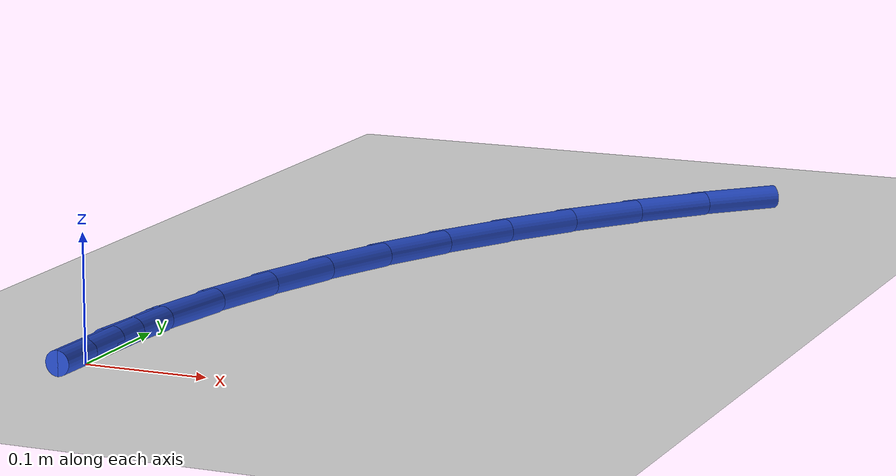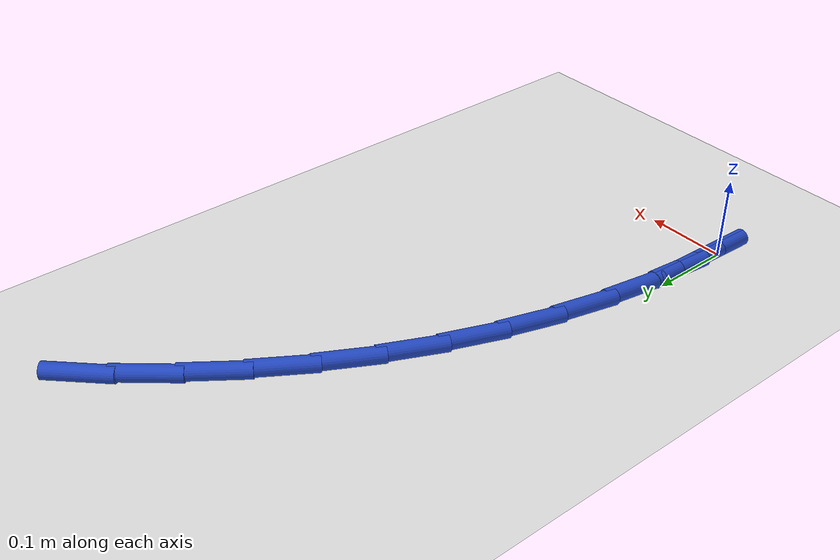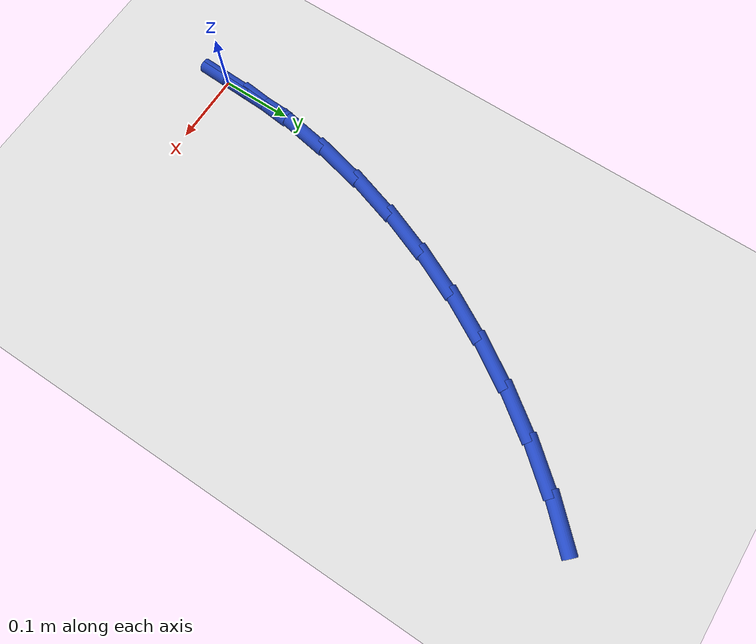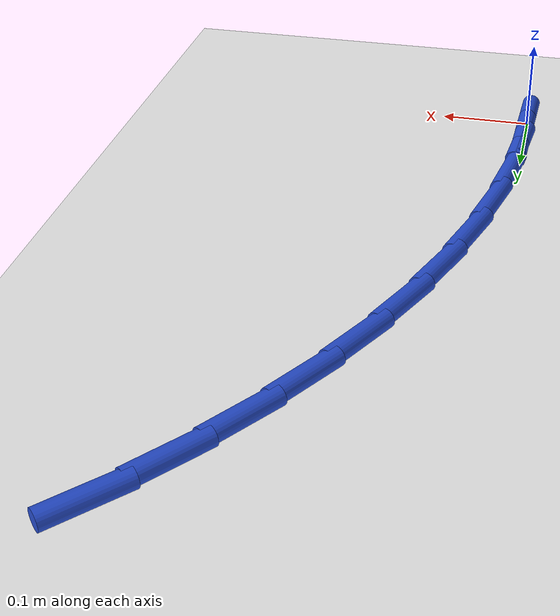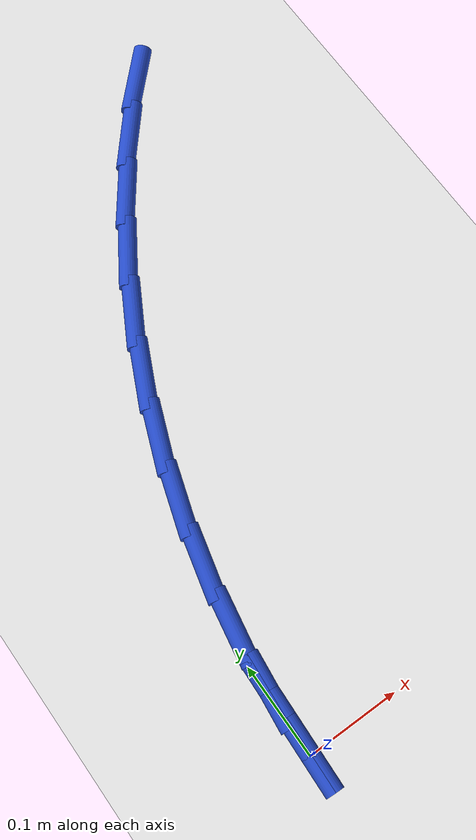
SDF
<sdf version="1.6">
 <world name="default">
  <model name="ground_plane">
   <static>1</static>
   <link name="link">
    <collision name="collision">
     <geometry><plane><normal>0 0 1</normal><size>100 100</size></plane></geometry>
     <surface><friction><ode><mu>100</mu><mu2>50</mu2></ode></friction></surface>
    </collision>
    <visual name="visual">
     <cast_shadows>0</cast_shadows>
     <geometry><plane><normal>0 0 1</normal><size>100 100</size></plane></geometry>
     <material>
      <script><uri>file://media/materials/scripts/gazebo.material</uri><name>Gazebo/WhiteGlow</name></script>
     </material>
    </visual>
   </link>
  </model>
  <model name="line">
   <link name="link_0">
    <pose>-6.938893903907228e-18 -6.938893903907228e-17 0.01 0 1.57 1.5312098768400333</pose>
    <collision name="collision">
     <geometry><cylinder><radius>0.01</radius><length>0.08</length></cylinder></geometry>
    </collision>
    <visual name="visual">
     <material>
      <script><name>Gazebo/Blue</name><uri>file://media/materials/scripts/gazebo.material</uri></script>
     </material>
     <geometry><cylinder><radius>0.01</radius><length>0.08</length></cylinder></geometry>
    </visual>
   </link>
   <link name="link_1">
    <pose>0.0027434091458536365 0.0692655175097041 0.01 0 1.57 1.4637290242650784</pose>
    <collision name="collision">
     <geometry><cylinder><radius>0.01</radius><length>0.08</length></cylinder></geometry>
    </collision>
    <visual name="visual">
     <material>
      <script><name>Gazebo/Blue</name><uri>file://media/materials/scripts/gazebo.material</uri></script>
     </material>
     <geometry><cylinder><radius>0.01</radius><length>0.08</length></cylinder></geometry>
    </visual>
   </link>
   <link name="link_2">
    <pose>0.010093451086212422 0.1376518013901452 0.01 0 1.57 1.3960863406964514</pose>
    <collision name="collision">
     <geometry><cylinder><radius>0.01</radius><length>0.08</length></cylinder></geometry>
    </collision>
    <visual name="visual">
     <material>
      <script><name>Gazebo/Blue</name><uri>file://media/materials/scripts/gazebo.material</uri></script>
     </material>
     <geometry><cylinder><radius>0.01</radius><length>0.08</length></cylinder></geometry>
    </visual>
   </link>
   <link name="link_3">
    <pose>0.021985627886528816 0.2050259272788629 0.01 0 1.57 1.3284832314110588</pose>
    <collision name="collision">
     <geometry><cylinder><radius>0.01</radius><length>0.08</length></cylinder></geometry>
    </collision>
    <visual name="visual">
     <material>
      <script><name>Gazebo/Blue</name><uri>file://media/materials/scripts/gazebo.material</uri></script>
     </material>
     <geometry><cylinder><radius>0.01</radius><length>0.08</length></cylinder></geometry>
    </visual>
   </link>
   <link name="link_4">
    <pose>0.03835544161225528 0.27125497081339706 0.01 0 1.57 1.2611126425132235</pose>
    <collision name="collision">
     <geometry><cylinder><radius>0.01</radius><length>0.08</length></cylinder></geometry>
    </collision>
    <visual name="visual">
     <material>
      <script><name>Gazebo/Blue</name><uri>file://media/materials/scripts/gazebo.material</uri></script>
     </material>
     <geometry><cylinder><radius>0.01</radius><length>0.08</length></cylinder></geometry>
    </visual>
   </link>
   <link name="link_5">
    <pose>0.059138394328844275 0.3362060076312875 0.01 0 1.57 1.1941551012390421</pose>
    <collision name="collision">
     <geometry><cylinder><radius>0.01</radius><length>0.08</length></cylinder></geometry>
    </collision>
    <visual name="visual">
     <material>
      <script><name>Gazebo/Blue</name><uri>file://media/materials/scripts/gazebo.material</uri></script>
     </material>
     <geometry><cylinder><radius>0.01</radius><length>0.08</length></cylinder></geometry>
    </visual>
   </link>
   <link name="link_6">
    <pose>0.08426998810174821 0.3997461133700736 0.01 0 1.57 1.1277755609891429</pose>
    <collision name="collision">
     <geometry><cylinder><radius>0.01</radius><length>0.08</length></cylinder></geometry>
    </collision>
    <visual name="visual">
     <material>
      <script><name>Gazebo/Blue</name><uri>file://media/materials/scripts/gazebo.material</uri></script>
     </material>
     <geometry><cylinder><radius>0.01</radius><length>0.08</length></cylinder></geometry>
    </visual>
   </link>
   <link name="link_7">
    <pose>0.11368572499641963 0.4617423636672956 0.01 0 1.57 1.0621211654017937</pose>
    <collision name="collision">
     <geometry><cylinder><radius>0.01</radius><length>0.08</length></cylinder></geometry>
    </collision>
    <visual name="visual">
     <material>
      <script><name>Gazebo/Blue</name><uri>file://media/materials/scripts/gazebo.material</uri></script>
     </material>
     <geometry><cylinder><radius>0.01</radius><length>0.08</length></cylinder></geometry>
    </visual>
   </link>
   <link name="link_8">
    <pose>0.14732110707831092 0.522061834160493 0.01 0 1.57 0.997247537698343</pose>
    <collision name="collision">
     <geometry><cylinder><radius>0.01</radius><length>0.08</length></cylinder></geometry>
    </collision>
    <visual name="visual">
     <material>
      <script><name>Gazebo/Blue</name><uri>file://media/materials/scripts/gazebo.material</uri></script>
     </material>
     <geometry><cylinder><radius>0.01</radius><length>0.08</length></cylinder></geometry>
    </visual>
   </link>
   <link name="link_9">
    <pose>0.18510353457641046 0.5805497624430651 0.01 0 1.57 0.9321991640489552</pose>
    <collision name="collision">
     <geometry><cylinder><radius>0.01</radius><length>0.08</length></cylinder></geometry>
    </collision>
    <visual name="visual">
     <material>
      <script><name>Gazebo/Blue</name><uri>file://media/materials/scripts/gazebo.material</uri></script>
     </material>
     <geometry><cylinder><radius>0.01</radius><length>0.08</length></cylinder></geometry>
    </visual>
   </link>
   <link name="link_10">
    <pose>0.22687250730351596 0.6368144554844435 0.01 0 1.57 0.8656270905541451</pose>
    <collision name="collision">
     <geometry><cylinder><radius>0.01</radius><length>0.08</length></cylinder></geometry>
    </collision>
    <visual name="visual">
     <material>
      <script><name>Gazebo/Blue</name><uri>file://media/materials/scripts/gazebo.material</uri></script>
     </material>
     <geometry><cylinder><radius>0.01</radius><length>0.08</length></cylinder></geometry>
    </visual>
   </link>
   <link name="link_11">
    <pose>0.2724136628434134 0.6903190376476385 0.01 0 1.57 0.7965483499066713</pose>
    <collision name="collision">
     <geometry><cylinder><radius>0.01</radius><length>0.08</length></cylinder></geometry>
    </collision>
    <visual name="visual">
     <material>
      <script><name>Gazebo/Blue</name><uri>file://media/materials/scripts/gazebo.material</uri></script>
     </material>
     <geometry><cylinder><radius>0.01</radius><length>0.08</length></cylinder></geometry>
    </visual>
   </link>
   <link name="link_110">
    <pose>-4.5102810375396984e-17 9.71445146547012e-17 0.01 0 1.57 1.5310230641104583</pose>
    <collision name="collision">
     <geometry><cylinder><radius>0.01</radius><length>0.08</length></cylinder></geometry>
    </collision>
    <visual name="visual">
     <material>
      <script><name>Gazebo/Blue</name><uri>file://media/materials/scripts/gazebo.material</uri></script>
     </material>
     <geometry><cylinder><radius>0.01</radius><length>0.08</length></cylinder></geometry>
    </visual>
   </link>
   <link name="link_111">
    <pose>0.0027527971176223437 0.06917575319442075 0.01 0 1.57 1.531023064110459</pose>
    <collision name="collision">
     <geometry><cylinder><radius>0.01</radius><length>0.08</length></cylinder></geometry>
    </collision>
    <visual name="visual">
     <material>
      <script><name>Gazebo/Blue</name><uri>file://media/materials/scripts/gazebo.material</uri></script>
     </material>
     <geometry><cylinder><radius>0.01</radius><length>0.08</length></cylinder></geometry>
    </visual>
   </link>
  </model>
 </world>
</sdf>
